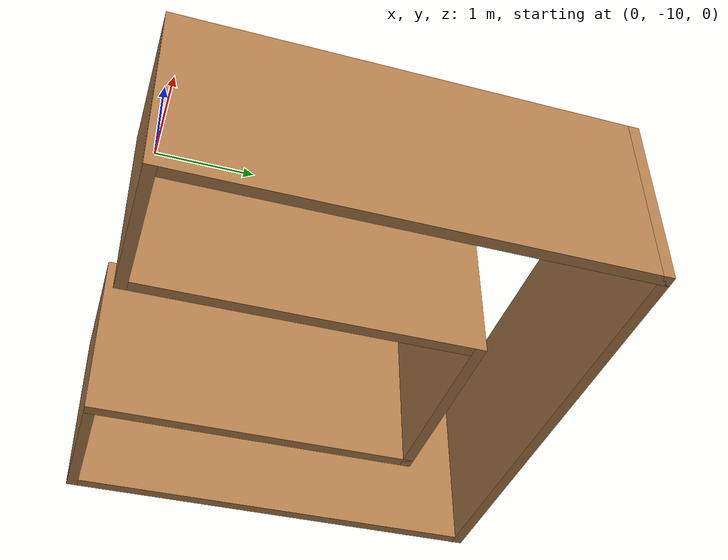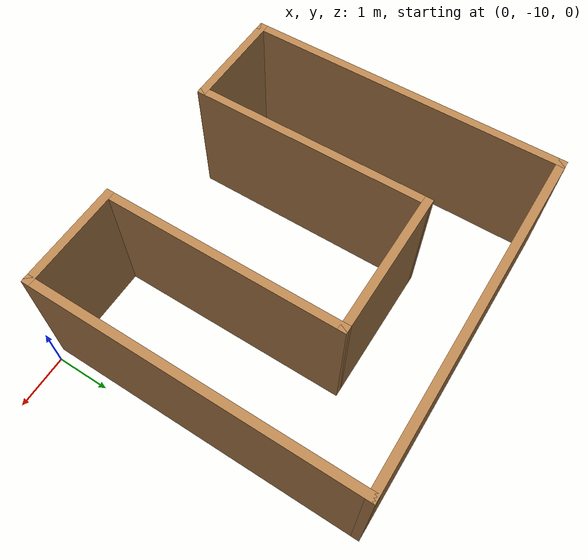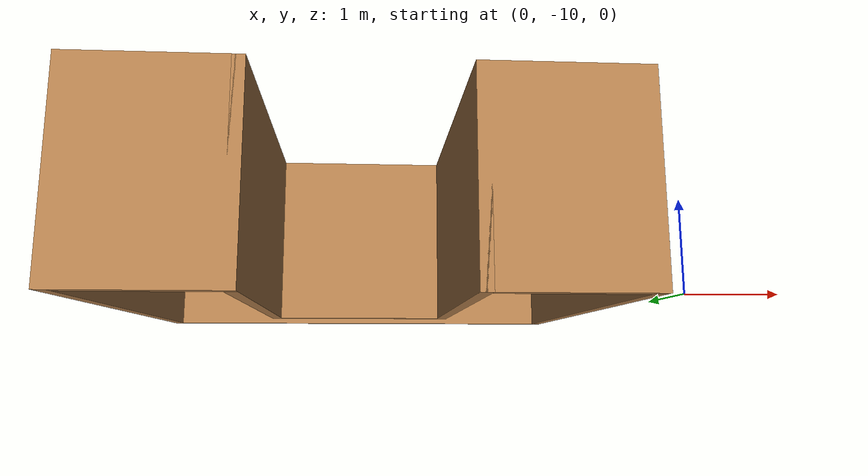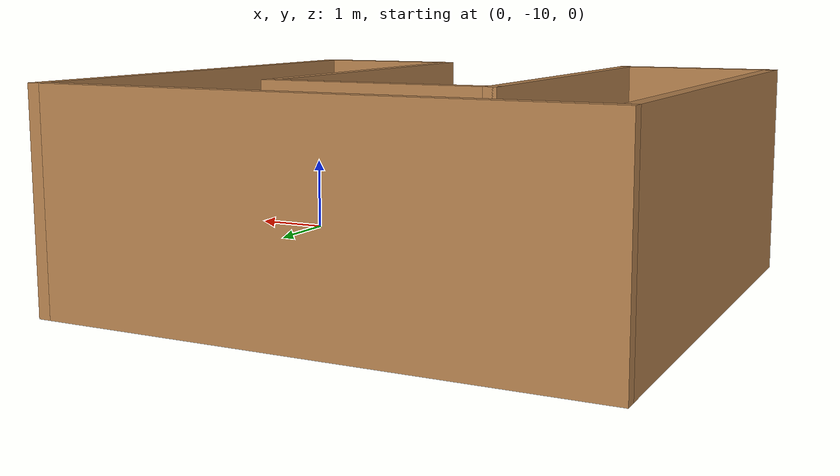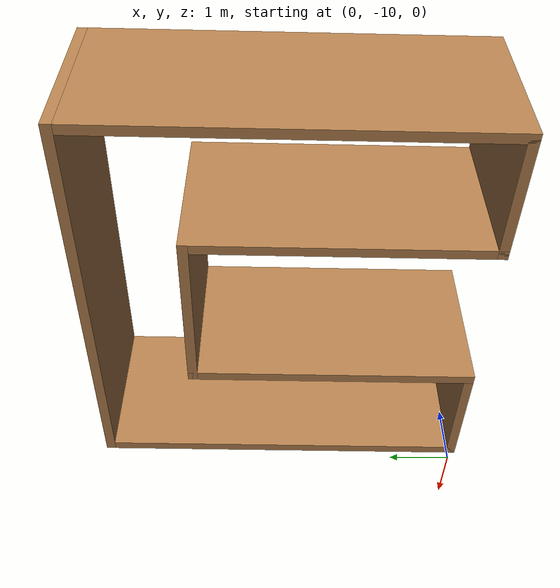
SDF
<?xml version='1.0'?>
<sdf version='1.6'>
  <model name='WorldN'>
    <pose frame=''>-3.39 -7.095 0 0 -0 0</pose>
    <link name='Wall_0'>
      <collision name='Wall_0_Collision'>
        <geometry>
          <box>
            <size>6 0.15 2.5</size>
          </box>
        </geometry>
        <pose frame=''>0 0 1.25 0 -0 0</pose>
      </collision>
      <visual name='Wall_0_Visual'>
        <pose frame=''>0 0 1.25 0 -0 0</pose>
        <geometry>
          <box>
            <size>6 0.15 2.5</size>
          </box>
        </geometry>
        <material>
          <script>
            <uri>file://media/materials/scripts/gazebo.material</uri>
            <name>Gazebo/Wood</name>
          </script>
          <ambient>1 1 1 1</ambient>
        </material>
        <meta>
          <layer>0</layer>
        </meta>
      </visual>
      <pose frame=''>-3.15 0 0 0 0 -1.5708</pose>
    </link>
    <link name='Wall_1'>
      <collision name='Wall_1_Collision'>
        <geometry>
          <box>
            <size>2 0.15 2.5</size>
          </box>
        </geometry>
        <pose frame=''>0 0 1.25 0 -0 0</pose>
      </collision>
      <visual name='Wall_1_Visual'>
        <pose frame=''>0 0 1.25 0 -0 0</pose>
        <geometry>
          <box>
            <size>2 0.15 2.5</size>
          </box>
        </geometry>
        <material>
          <script>
            <uri>file://media/materials/scripts/gazebo.material</uri>
            <name>Gazebo/Wood</name>
          </script>
          <ambient>1 1 1 1</ambient>
        </material>
        <meta>
          <layer>0</layer>
        </meta>
      </visual>
      <pose frame=''>-2.225 -2.925 0 0 -0 0</pose>
    </link>
    <link name='Wall_2'>
      <collision name='Wall_2_Collision'>
        <geometry>
          <box>
            <size>4.5 0.15 2.5</size>
          </box>
        </geometry>
        <pose frame=''>0 0 1.25 0 -0 0</pose>
      </collision>
      <visual name='Wall_2_Visual'>
        <pose frame=''>0 0 1.25 0 -0 0</pose>
        <geometry>
          <box>
            <size>4.5 0.15 2.5</size>
          </box>
        </geometry>
        <material>
          <script>
            <uri>file://media/materials/scripts/gazebo.material</uri>
            <name>Gazebo/Wood</name>
          </script>
          <ambient>1 1 1 1</ambient>
        </material>
        <meta>
          <layer>0</layer>
        </meta>
      </visual>
      <pose frame=''>-1.3 -0.75 0 0 -0 1.5708</pose>
    </link>
    <link name='Wall_3'>
      <collision name='Wall_3_Collision'>
        <geometry>
          <box>
            <size>2.75 0.15 2.5</size>
          </box>
        </geometry>
        <pose frame=''>0 0 1.25 0 -0 0</pose>
      </collision>
      <visual name='Wall_3_Visual'>
        <pose frame=''>0 0 1.25 0 -0 0</pose>
        <geometry>
          <box>
            <size>2.75 0.15 2.5</size>
          </box>
        </geometry>
        <material>
          <script>
            <uri>file://media/materials/scripts/gazebo.material</uri>
            <name>Gazebo/Wood</name>
          </script>
          <ambient>1 1 1 1</ambient>
        </material>
        <meta>
          <layer>0</layer>
        </meta>
      </visual>
      <pose frame=''>0 1.425 0 0 -0 0</pose>
    </link>
    <link name='Wall_4'>
      <collision name='Wall_4_Collision'>
        <geometry>
          <box>
            <size>4.5 0.15 2.5</size>
          </box>
        </geometry>
        <pose frame=''>0 0 1.25 0 -0 0</pose>
      </collision>
      <visual name='Wall_4_Visual'>
        <pose frame=''>0 0 1.25 0 -0 0</pose>
        <geometry>
          <box>
            <size>4.5 0.15 2.5</size>
          </box>
        </geometry>
        <material>
          <script>
            <uri>file://media/materials/scripts/gazebo.material</uri>
            <name>Gazebo/Wood</name>
          </script>
          <ambient>1 1 1 1</ambient>
        </material>
        <meta>
          <layer>0</layer>
        </meta>
      </visual>
      <pose frame=''>1.3 -0.75 0 0 0 -1.5708</pose>
    </link>
    <link name='Wall_5'>
      <collision name='Wall_5_Collision'>
        <geometry>
          <box>
            <size>2 0.15 2.5</size>
          </box>
        </geometry>
        <pose frame=''>0 0 1.25 0 -0 0</pose>
      </collision>
      <visual name='Wall_5_Visual'>
        <pose frame=''>0 0 1.25 0 -0 0</pose>
        <geometry>
          <box>
            <size>2 0.15 2.5</size>
          </box>
        </geometry>
        <material>
          <script>
            <uri>file://media/materials/scripts/gazebo.material</uri>
            <name>Gazebo/Wood</name>
          </script>
          <ambient>1 1 1 1</ambient>
        </material>
        <meta>
          <layer>0</layer>
        </meta>
      </visual>
      <pose frame=''>2.225 -2.925 0 0 -0 0</pose>
    </link>
    <link name='Wall_6'>
      <collision name='Wall_6_Collision'>
        <geometry>
          <box>
            <size>6 0.15 2.5</size>
          </box>
        </geometry>
        <pose frame=''>0 0 1.25 0 -0 0</pose>
      </collision>
      <visual name='Wall_6_Visual'>
        <pose frame=''>0 0 1.25 0 -0 0</pose>
        <geometry>
          <box>
            <size>6 0.15 2.5</size>
          </box>
        </geometry>
        <material>
          <script>
            <uri>file://media/materials/scripts/gazebo.material</uri>
            <name>Gazebo/Wood</name>
          </script>
          <ambient>1 1 1 1</ambient>
        </material>
        <meta>
          <layer>0</layer>
        </meta>
      </visual>
      <pose frame=''>3.15 0 0 0 -0 1.5708</pose>
    </link>
    <link name='Wall_7'>
      <collision name='Wall_7_Collision'>
        <geometry>
          <box>
            <size>6.45 0.15 2.5</size>
          </box>
        </geometry>
        <pose frame=''>0 0 1.25 0 -0 0</pose>
      </collision>
      <visual name='Wall_7_Visual'>
        <pose frame=''>0 0 1.25 0 -0 0</pose>
        <geometry>
          <box>
            <size>6.45 0.15 2.5</size>
          </box>
        </geometry>
        <material>
          <script>
            <uri>file://media/materials/scripts/gazebo.material</uri>
            <name>Gazebo/Wood</name>
          </script>
          <ambient>1 1 1 1</ambient>
        </material>
        <meta>
          <layer>0</layer>
        </meta>
      </visual>
      <pose frame=''>0 2.925 0 0 -0 3.14159</pose>
    </link>
    <static>1</static>
  </model>
</sdf>
